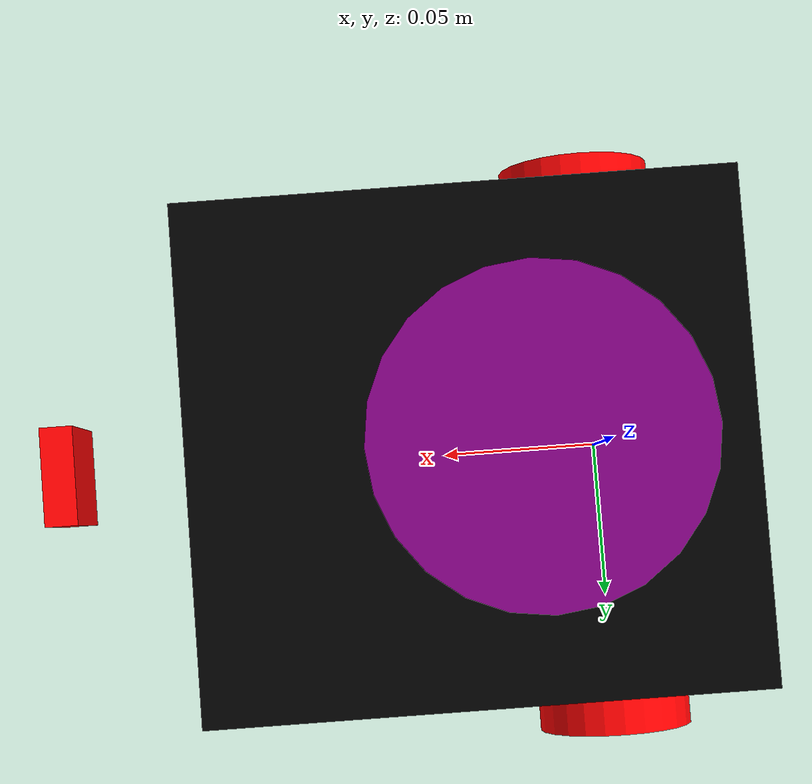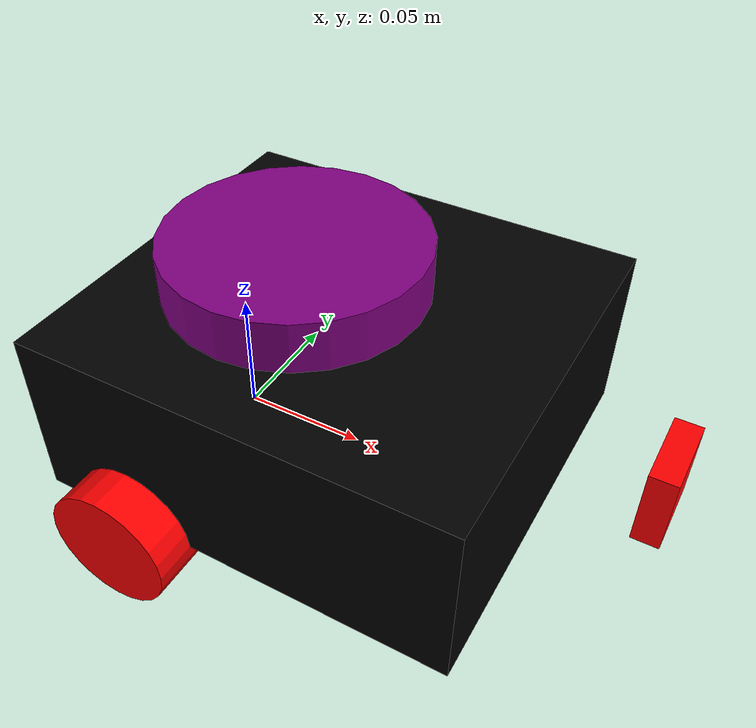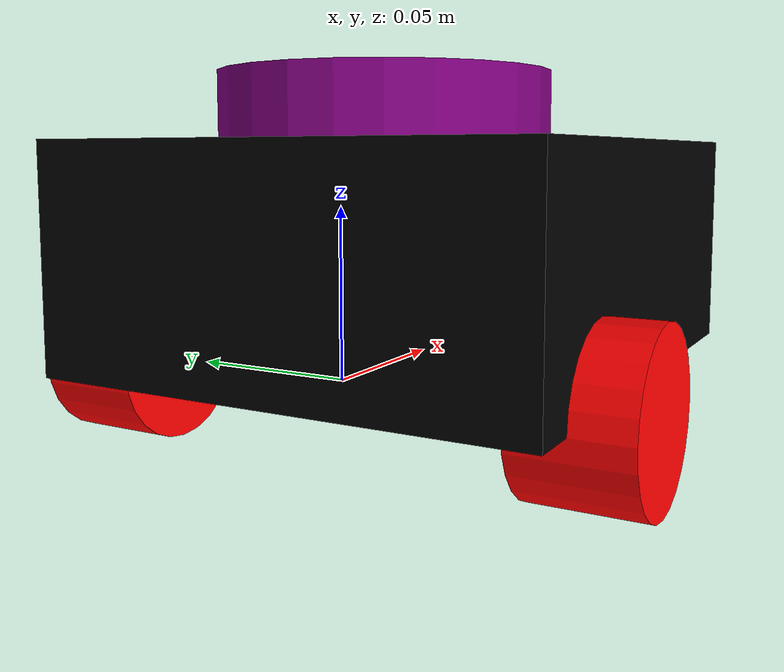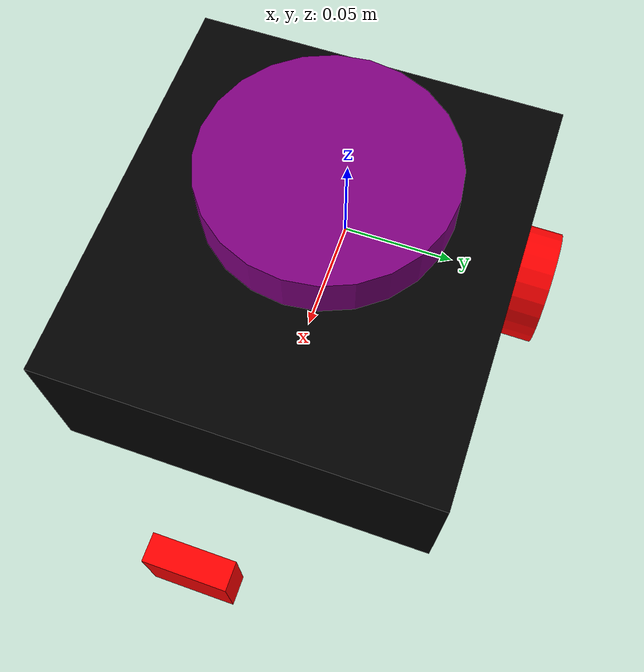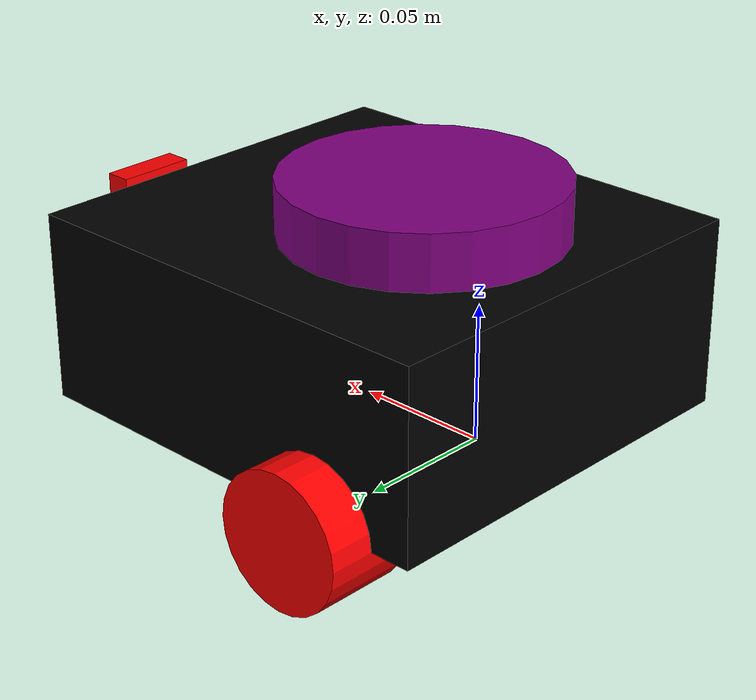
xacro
<?xml version="1.0"?>
<robot xmlns:xacro="http://www.ros.org/wiki/xacro"  name="robot">

    <!-- We define variables to configure our robot correctly  -->

    <!-- We initialize our robot for real time and with ros2 control enable  -->
    <xacro:arg name="use_ros2_control" default="true"/>
    <xacro:arg name="sim_mode" default="false"/>

    <!-- We include the core of our robot -->
    <xacro:include filename="robot_core.xacro" />

    <!-- We include the lidar in our robot -->
    <xacro:include filename="lidar.xacro" />

    <!-- We include the camera in our robot  -->
    <xacro:include filename="camera.xacro" />

    <!-- We include the selected control file -->

    <!-- If use_ros2_control is true we include the ros2_control.xacro file -->
    <xacro:if value="$(arg use_ros2_control)">
        <xacro:include filename="ros2_control.xacro" />
    </xacro:if>

    <!-- If use_ros2_control is false we include the gazebo_control.xacro file -->
    <xacro:unless value="$(arg use_ros2_control)">
        <xacro:include filename="gazebo_control.xacro" />
    </xacro:unless>

</robot>

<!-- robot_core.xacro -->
<robot xmlns:xacro="http://www.ros.org/wiki/xacro" >

    <!-- Include inertial macros -->
    <xacro:include filename="inertial_macros.xacro"/>

    <xacro:property name="chassis_length" value="0.16782"/>
    <xacro:property name="chassis_width" value="0.154"/>
    <xacro:property name="chassis_height" value="0.0692"/>
    <xacro:property name="chassis_mass" value="1.5"/>
    <xacro:property name="wheel_radius" value="0.0248"/>
    <xacro:property name="wheel_thickness" value="0.03315"/>
    <xacro:property name="wheel_mass"   value="0.090"/>
    <xacro:property name="wheel_offset_x" value="0.04"/>
    <xacro:property name="wheel_offset_y" value="0.077"/>
    <xacro:property name="wheel_offset_z" value="0.0"/>

    <!-- Wheel for support -->
    <xacro:property name="caster_wheel_radius" value="0.04"/>
    <xacro:property name="caster_wheel_mass" value="0.020"/>
    <xacro:property name="caster_wheel_offset_x" value="0.540"/>
    <xacro:property name="caster_wheel_offset_z" value="${wheel_offset_z - wheel_radius + caster_wheel_radius}"/>

    <!-- We set up the colors for the URDF file -->
    <material name="white">
        <color rgba="1 1 1 1" />
    </material>

    <material name="orange">
        <color rgba="1 0.3 0.1 1"/>
    </material>

    <material name="blue">
        <color rgba="0.2 0.2 1 1"/>
    </material>

    <material name="black">
        <color rgba="0 0 0 1"/>
    </material>

    <material name="red">
        <color rgba="1 0 0 1"/>
    </material>

    <material name="purple">
        <color rgba="0.5 0 0.5 1"/>
    </material>

    <!-- BASE LINK -->
    <link name="base_link">

    </link>

    <!-- BASE FOOTPRINT LINK-->
    <joint name="base_footprint_joint" type="fixed">
        <parent link="base_link"/>
        <child link="base_footprint"/>
        <origin xyz="0 0 0" rpy="0 0 0"/>
    </joint>

    <link name="base_footprint">
    </link>

    <!-- CHASSIS LINK -->
    <joint name="chassis_joint" type="fixed">
        <parent link="base_link"/>
        <child link="chassis"/>
        <origin xyz="${-wheel_offset_x} 0 ${-wheel_offset_z}"/>
    </joint>

    <link name="chassis">
        <visual>
            <origin xyz="${chassis_length/2} 0 ${chassis_height/2}"/>
            <geometry>
                <box size="${chassis_length} ${chassis_width} ${chassis_height}"/>
            </geometry>
            <material name="black"/>
        </visual>
        <collision>
            <origin xyz="${chassis_length/2} 0 ${chassis_height/2}"/>
            <geometry>
                <box size="${chassis_length} ${chassis_width} ${chassis_height}"/>
            </geometry>
        </collision>
        <xacro:inertial_box mass="0.5" x="${chassis_length}" y="${chassis_width}" z="${chassis_height}">
            <origin xyz="${chassis_length/2} 0 ${chassis_height/2}" rpy="0 0 0"/>
        </xacro:inertial_box>
    </link>

    <gazebo reference="chassis">
        <material>Gazebo/Black</material>
    </gazebo>

    <!-- LEFT WHEEL LINK -->
    <joint name="left_wheel_joint" type="continuous">
        <parent link="base_link"/>
        <child link="left_wheel"/>
        <origin xyz="0 ${wheel_offset_y} 0" rpy="-${pi/2} 0 0" />
        <axis xyz="0 0 1"/>
    </joint>

    <link name="left_wheel">
        <visual>
            <geometry>
                <cylinder radius="${wheel_radius}" length="${wheel_thickness}"/>
            </geometry>
            <material name="red"/>
        </visual>
        <collision>
            <geometry>
                <sphere radius="${wheel_radius}"/>
            </geometry>
        </collision>
        <xacro:inertial_cylinder mass="${wheel_mass}" length="${wheel_thickness}" radius="${wheel_radius}">
            <origin xyz="0 0 0" rpy="0 0 0"/>
        </xacro:inertial_cylinder>
    </link>

    <gazebo reference="left_wheel">
        <material>Gazebo/Red</material>
    </gazebo>

    <!-- RIGHT WHEEL LINK -->
    <joint name="right_wheel_joint" type="continuous">
        <parent link="base_link"/>
        <child link="right_wheel"/>
        <origin xyz="0 ${-wheel_offset_y} 0" rpy="${pi/2} 0 0" />
        <axis xyz="0 0 -1"/>
    </joint>

    <link name="right_wheel">
        <visual>
            <geometry>
                <cylinder radius="${wheel_radius}" length="${wheel_thickness}"/>
            </geometry>
            <material name="red"/>
        </visual>
        <collision>
            <geometry>
                <sphere radius="${wheel_radius}"/>
            </geometry>
        </collision>
        <xacro:inertial_cylinder mass="${wheel_mass}" length="${wheel_thickness}" radius="${wheel_radius}">
            <origin xyz="0 0 0" rpy="0 0 0"/>
        </xacro:inertial_cylinder>
    </link>

    <gazebo reference="right_wheel">
        <material>Gazebo/Red</material>
    </gazebo>

    <!-- CASTER WHEEL LINK -->
    <joint name="caster_wheel_joint" type="fixed">
        <parent link="chassis"/>
        <child link="caster_wheel"/>
        <origin xyz="${caster_wheel_offset_x} 0 ${caster_wheel_offset_z}"/>
    </joint>

    <link name="caster_wheel">
        <collision>
            <geometry>
                <sphere radius="${caster_wheel_radius}"/>
            </geometry>
        </collision>
        <xacro:inertial_sphere mass="${caster_wheel_mass}" radius="${caster_wheel_radius}">
            <origin xyz="0 0 0" rpy="0 0 0"/>
        </xacro:inertial_sphere>
    </link>

    <gazebo reference="caster_wheel">
        <material>Gazebo/Orange</material>
        <mu1 value="0.001"/>
        <mu2 value="0.001"/>
    </gazebo>

</robot>

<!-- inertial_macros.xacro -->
<robot xmlns:xacro="http://www.ros.org/wiki/xacro" >

    <!-- Inertial Frame of reference for a Sphere -->
    <xacro:macro name="inertial_sphere" params="mass radius *origin">
        <inertial>
            <xacro:insert_block name="origin"/>
            <mass value="${mass}" />
            <inertia ixx="${(2/5) * mass * (radius*radius)}" ixy="0.0" ixz="0.0"
                    iyy="${(2/5) * mass * (radius*radius)}" iyz="0.0"
                    izz="${(2/5) * mass * (radius*radius)}" />
        </inertial>
    </xacro:macro>

    <!-- Inertial Frame of reference for a Box -->
    <xacro:macro name="inertial_box" params="mass x y z *origin">
        <inertial>
            <xacro:insert_block name="origin"/>
            <mass value="${mass}" />
            <inertia ixx="${(1/12) * mass * (y*y+z*z)}" ixy="0.0" ixz="0.0"
                    iyy="${(1/12) * mass * (x*x+z*z)}" iyz="0.0"
                    izz="${(1/12) * mass * (x*x+y*y)}" />
        </inertial>
    </xacro:macro>

    <!-- Inertial Frame of reference for a Cylinder -->
    <xacro:macro name="inertial_cylinder" params="mass length radius *origin">
        <inertial>
            <xacro:insert_block name="origin"/>
            <mass value="${mass}" />
            <inertia ixx="${(1/12) * mass * (3*radius*radius + length*length)}" ixy="0.0" ixz="0.0"
                    iyy="${(1/12) * mass * (3*radius*radius + length*length)}" iyz="0.0"
                    izz="${(1/2) * mass * (radius*radius)}" />
        </inertial>
    </xacro:macro>

</robot>

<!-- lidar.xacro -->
<robot xmlns:xacro="http://www.ros.org/wiki/xacro" >

    <!-- LASER FRAME LINK -->
    <joint name="laser_joint" type="fixed">
        <parent link="chassis"/>
        <child link="laser_frame"/>
        <origin xyz="0.065 0 0.0692" rpy="0 0 ${pi}"/>
    </joint>

    <link name="laser_frame">
        <visual>
            <geometry>
                <cylinder radius="0.05" length="0.04"/>
            </geometry>
            <material name="purple"/>
        </visual>
        <collision>
            <geometry>
                <cylinder radius="0.05" length="0.04"/>
            </geometry>
        </collision>
        <xacro:inertial_cylinder mass="0.00001" length="0.04" radius="0.05">
            <origin xyz="0 0 0" rpy="0 0 0"/>
        </xacro:inertial_cylinder>
    </link>

    <!-- GAZEBO SIMULATION -->
    <gazebo reference="laser_frame">
        <material>Gazebo/Purple</material>
        <sensor name="laser" type="ray">
            <pose> 0 0 0 0 0 0 </pose>
            <visualize>true</visualize>
            <update_rate>10</update_rate>
            <ray>
                <scan>
                    <horizontal>
                        <samples>360</samples>
                        <min_angle>-3.14</min_angle>
                        <max_angle>3.14</max_angle>
                    </horizontal>
                </scan>
                <range>
                    <min>0.3</min>
                    <max>12</max>
                </range>
            </ray>
            <plugin name="laser_controller" filename="libgazebo_ros_ray_sensor.so">
                <ros>
                    <argument>~/out:=scan</argument>
                </ros>
                <output_type>sensor_msgs/LaserScan</output_type>
                <frame_name>laser_frame</frame_name>
            </plugin>
        </sensor>
    </gazebo>

</robot>

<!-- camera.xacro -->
<robot xmlns:xacro="http://www.ros.org/wiki/xacro" >

    <joint name="camera_joint" type="fixed">
        <parent link="chassis"/>
        <child link="camera_link"/>
        <origin xyz="0.20782 0 0.04" rpy="0 0 0"/>
    </joint>

    <link name="camera_link">
        <visual>
            <geometry>
                <box size="0.010 0.03 0.03"/>
            </geometry>
            <material name="red"/>
        </visual>
    </link>

    <joint name="camera_optical_joint" type="fixed">
        <parent link="camera_link"/>
        <child link="camera_link_optical"/>
        <origin xyz="0 0 0" rpy="${-pi/2} 0 ${-pi/2}"/>
    </joint>

    <link name="camera_link_optical"></link>

    <gazebo reference="camera_link">
        <material>Gazebo/Red</material>

        <sensor name="camera" type="camera">
            <pose> 0 0 0 0 0 0 </pose>
            <visualize>true</visualize>
            <update_rate>10</update_rate>
            <camera>
                <horizontal_fov>1.089</horizontal_fov>
                <image>
                    <format>R8G8B8</format>
                    <width>640</width>
                    <height>480</height>
                </image>
                <clip>
                    <near>0.05</near>
                    <far>8.0</far>
                </clip>
            </camera>
            <plugin name="camera_controller" filename="libgazebo_ros_camera.so">
                <frame_name>camera_link_optical</frame_name>
            </plugin>
        </sensor>
    </gazebo>

</robot>
